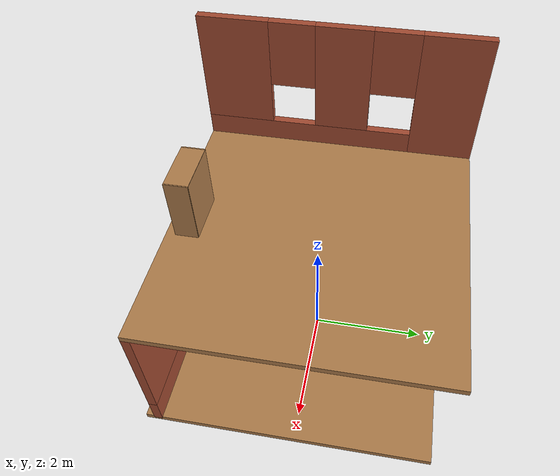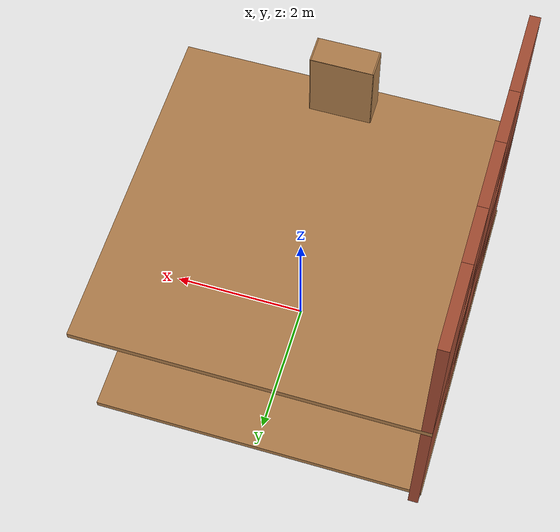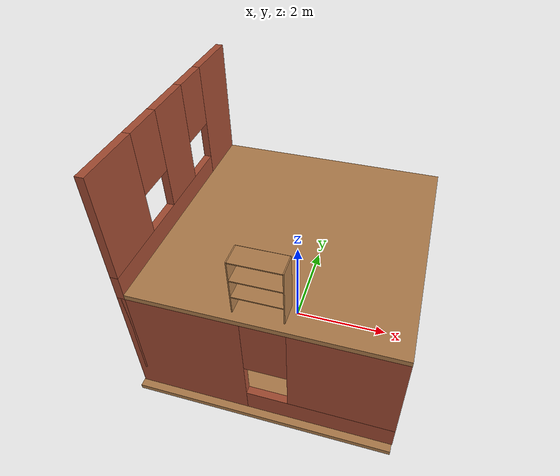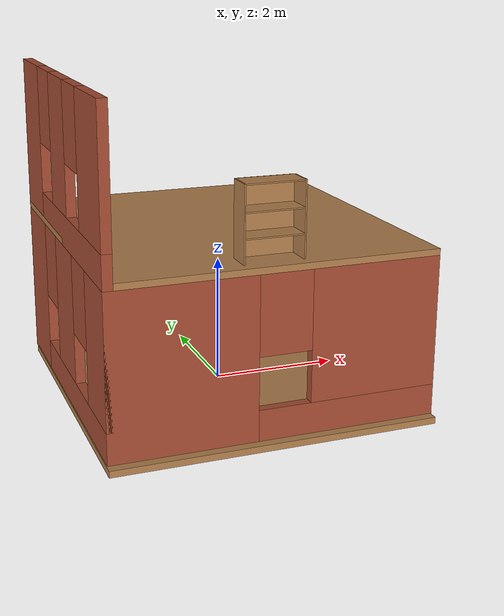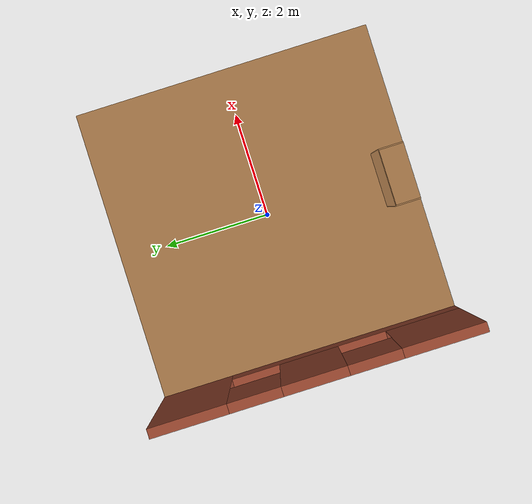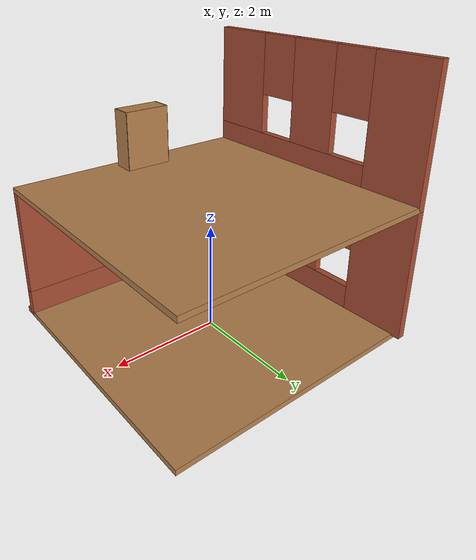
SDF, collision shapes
<sdf version="1.6">
 <model name="building1">
  <link name="Floor_0">
   <pose>0 0 2.5 0 -0 0</pose>
   <inertial>
    <mass>1</mass>
    <inertia><ixx>1</ixx><ixy>0</ixy><ixz>0</ixz><iyy>1</iyy><iyz>0</iyz><izz>1</izz></inertia>
   </inertial>
   <visual name="Floor_0_Visual">
    <pose>0 0 0.05 0 -0 0</pose>
    <geometry><box><size>5 5 0.1</size></box></geometry>
    <material>
     <script><uri>file://media/materials/scripts/gazebo.material</uri><name>Gazebo/Wood</name></script>
     <ambient>1 1 1 1</ambient>
     <shader type="pixel"><normal_map>__default__</normal_map></shader>
    </material>
    <meta><layer>1</layer></meta>
   </visual>
   <collision name="Floor_0_Collision">
    <pose>0 0 0.05 0 -0 0</pose>
    <geometry><box><size>5 5 0.1</size></box></geometry>
    <surface>
     <friction>
      <ode><mu>1</mu><mu2>1</mu2><fdir1>0 0 0</fdir1><slip1>0</slip1><slip2>0</slip2></ode>
      <torsional>
       <coefficient>1</coefficient>
       <patch_radius>0</patch_radius>
       <surface_radius>0</surface_radius>
       <use_patch_radius>1</use_patch_radius>
       <ode><slip>0</slip></ode>
      </torsional>
     </friction>
     <bounce><restitution_coefficient>0</restitution_coefficient><threshold>1e+06</threshold></bounce>
     <contact>
      <collide_without_contact>0</collide_without_contact>
      <collide_without_contact_bitmask>1</collide_without_contact_bitmask>
      <collide_bitmask>1</collide_bitmask>
      <ode>
       <soft_cfm>0</soft_cfm>
       <soft_erp>0.2</soft_erp>
       <kp>1e+13</kp>
       <kd>1</kd>
       <max_vel>0.01</max_vel>
       <min_depth>0</min_depth>
      </ode>
      <bullet>
       <split_impulse>1</split_impulse>
       <split_impulse_penetration_threshold>-0.01</split_impulse_penetration_threshold>
       <soft_cfm>0</soft_cfm>
       <soft_erp>0.2</soft_erp>
       <kp>1e+13</kp>
       <kd>1</kd>
      </bullet>
     </contact>
    </surface>
   </collision>
  </link>
  <link name="Floor_0_clone">
   <pose>-0.013101 -0.148574 -0.075535 0 -0 0</pose>
   <gravity>0</gravity>
   <inertial>
    <mass>1</mass>
    <inertia><ixx>1</ixx><ixy>0</ixy><ixz>0</ixz><iyy>1</iyy><iyz>0</iyz><izz>1</izz></inertia>
   </inertial>
   <visual name="Floor_0_Visual">
    <pose>0 0 0.05 0 -0 0</pose>
    <geometry><box><size>5 5 0.1</size></box></geometry>
    <material>
     <script><uri>file://media/materials/scripts/gazebo.material</uri><name>Gazebo/Wood</name></script>
     <ambient>1 1 1 1</ambient>
     <shader type="pixel"><normal_map>__default__</normal_map></shader>
    </material>
    <meta><layer>1</layer></meta>
   </visual>
   <collision name="Floor_0_Collision">
    <pose>0 0 0.05 0 -0 0</pose>
    <geometry><box><size>5 5 0.1</size></box></geometry>
    <surface>
     <friction>
      <ode><mu>1</mu><mu2>1</mu2><fdir1>0 0 0</fdir1><slip1>0</slip1><slip2>0</slip2></ode>
      <torsional>
       <coefficient>1</coefficient>
       <patch_radius>0</patch_radius>
       <surface_radius>0</surface_radius>
       <use_patch_radius>1</use_patch_radius>
       <ode><slip>0</slip></ode>
      </torsional>
     </friction>
     <bounce><restitution_coefficient>0</restitution_coefficient><threshold>1e+06</threshold></bounce>
     <contact>
      <collide_without_contact>0</collide_without_contact>
      <collide_without_contact_bitmask>1</collide_without_contact_bitmask>
      <collide_bitmask>1</collide_bitmask>
      <ode>
       <soft_cfm>0</soft_cfm>
       <soft_erp>0.2</soft_erp>
       <kp>1e+13</kp>
       <kd>1</kd>
       <max_vel>0.01</max_vel>
       <min_depth>0</min_depth>
      </ode>
      <bullet>
       <split_impulse>1</split_impulse>
       <split_impulse_penetration_threshold>-0.01</split_impulse_penetration_threshold>
       <soft_cfm>0</soft_cfm>
       <soft_erp>0.2</soft_erp>
       <kp>1e+13</kp>
       <kd>1</kd>
      </bullet>
     </contact>
    </surface>
   </collision>
  </link>
  <link name="Wall_1">
   <pose>0 -2.425 0 0 -0 0</pose>
   <visual name="Wall_1_Visual_3">
    <pose>0.109106 0 1.9 0 -0 0</pose>
    <geometry><box><size>0.8 0.15 1.2</size></box></geometry>
    <material>
     <script><uri>file://media/materials/scripts/gazebo.material</uri><name>Gazebo/Bricks</name></script>
     <ambient>1 1 1 1</ambient>
     <shader type="pixel"/>
    </material>
    <meta><layer>0</layer></meta>
   </visual>
   <visual name="Wall_1_Visual_1">
    <pose>1.10455 0 0.25 0 -0 0</pose>
    <geometry><box><size>2.79089 0.15 0.5</size></box></geometry>
    <material>
     <script><uri>file://media/materials/scripts/gazebo.material</uri><name>Gazebo/Bricks</name></script>
     <ambient>1 1 1 1</ambient>
     <shader type="pixel"/>
    </material>
    <meta><layer>0</layer></meta>
   </visual>
   <visual name="Wall_1_Visual_2">
    <pose>1.50455 0 1.5 0 -0 0</pose>
    <geometry><box><size>1.99089 0.15 2</size></box></geometry>
    <material>
     <script><uri>file://media/materials/scripts/gazebo.material</uri><name>Gazebo/Bricks</name></script>
     <ambient>1 1 1 1</ambient>
     <shader type="pixel"/>
    </material>
    <meta><layer>0</layer></meta>
   </visual>
   <visual name="Wall_1_Visual_0">
    <pose>-1.39545 0 1.25 0 -0 0</pose>
    <geometry><box><size>2.20911 0.15 2.5</size></box></geometry>
    <material>
     <script><uri>file://media/materials/scripts/gazebo.material</uri><name>Gazebo/Bricks</name></script>
     <ambient>1 1 1 1</ambient>
     <shader type="pixel"/>
    </material>
    <meta><layer>0</layer></meta>
   </visual>
   <collision name="Wall_1_Collision_3">
    <pose>0.109106 0 1.9 0 -0 0</pose>
    <geometry><box><size>0.8 0.15 1.2</size></box></geometry>
    <surface>
     <friction>
      <ode><mu>1</mu><mu2>1</mu2><fdir1>0 0 0</fdir1><slip1>0</slip1><slip2>0</slip2></ode>
      <torsional>
       <coefficient>1</coefficient>
       <patch_radius>0</patch_radius>
       <surface_radius>0</surface_radius>
       <use_patch_radius>1</use_patch_radius>
       <ode><slip>0</slip></ode>
      </torsional>
     </friction>
     <bounce><restitution_coefficient>0</restitution_coefficient><threshold>1e+06</threshold></bounce>
     <contact>
      <collide_without_contact>0</collide_without_contact>
      <collide_without_contact_bitmask>1</collide_without_contact_bitmask>
      <collide_bitmask>1</collide_bitmask>
      <ode>
       <soft_cfm>0</soft_cfm>
       <soft_erp>0.2</soft_erp>
       <kp>1e+13</kp>
       <kd>1</kd>
       <max_vel>0.01</max_vel>
       <min_depth>0</min_depth>
      </ode>
      <bullet>
       <split_impulse>1</split_impulse>
       <split_impulse_penetration_threshold>-0.01</split_impulse_penetration_threshold>
       <soft_cfm>0</soft_cfm>
       <soft_erp>0.2</soft_erp>
       <kp>1e+13</kp>
       <kd>1</kd>
      </bullet>
     </contact>
    </surface>
   </collision>
   <collision name="Wall_1_Collision_2">
    <pose>1.50455 0 1.5 0 -0 0</pose>
    <geometry><box><size>1.99089 0.15 2</size></box></geometry>
    <surface>
     <friction>
      <ode><mu>1</mu><mu2>1</mu2><fdir1>0 0 0</fdir1><slip1>0</slip1><slip2>0</slip2></ode>
      <torsional>
       <coefficient>1</coefficient>
       <patch_radius>0</patch_radius>
       <surface_radius>0</surface_radius>
       <use_patch_radius>1</use_patch_radius>
       <ode><slip>0</slip></ode>
      </torsional>
     </friction>
     <bounce><restitution_coefficient>0</restitution_coefficient><threshold>1e+06</threshold></bounce>
     <contact>
      <collide_without_contact>0</collide_without_contact>
      <collide_without_contact_bitmask>1</collide_without_contact_bitmask>
      <collide_bitmask>1</collide_bitmask>
      <ode>
       <soft_cfm>0</soft_cfm>
       <soft_erp>0.2</soft_erp>
       <kp>1e+13</kp>
       <kd>1</kd>
       <max_vel>0.01</max_vel>
       <min_depth>0</min_depth>
      </ode>
      <bullet>
       <split_impulse>1</split_impulse>
       <split_impulse_penetration_threshold>-0.01</split_impulse_penetration_threshold>
       <soft_cfm>0</soft_cfm>
       <soft_erp>0.2</soft_erp>
       <kp>1e+13</kp>
       <kd>1</kd>
      </bullet>
     </contact>
    </surface>
   </collision>
   <collision name="Wall_1_Collision_1">
    <pose>1.10455 0 0.25 0 -0 0</pose>
    <geometry><box><size>2.79089 0.15 0.5</size></box></geometry>
    <surface>
     <friction>
      <ode><mu>1</mu><mu2>1</mu2><fdir1>0 0 0</fdir1><slip1>0</slip1><slip2>0</slip2></ode>
      <torsional>
       <coefficient>1</coefficient>
       <patch_radius>0</patch_radius>
       <surface_radius>0</surface_radius>
       <use_patch_radius>1</use_patch_radius>
       <ode><slip>0</slip></ode>
      </torsional>
     </friction>
     <bounce><restitution_coefficient>0</restitution_coefficient><threshold>1e+06</threshold></bounce>
     <contact>
      <collide_without_contact>0</collide_without_contact>
      <collide_without_contact_bitmask>1</collide_without_contact_bitmask>
      <collide_bitmask>1</collide_bitmask>
      <ode>
       <soft_cfm>0</soft_cfm>
       <soft_erp>0.2</soft_erp>
       <kp>1e+13</kp>
       <kd>1</kd>
       <max_vel>0.01</max_vel>
       <min_depth>0</min_depth>
      </ode>
      <bullet>
       <split_impulse>1</split_impulse>
       <split_impulse_penetration_threshold>-0.01</split_impulse_penetration_threshold>
       <soft_cfm>0</soft_cfm>
       <soft_erp>0.2</soft_erp>
       <kp>1e+13</kp>
       <kd>1</kd>
      </bullet>
     </contact>
    </surface>
   </collision>
   <collision name="Wall_1_Collision_0">
    <pose>-1.39545 0 1.25 0 -0 0</pose>
    <geometry><box><size>2.20911 0.15 2.5</size></box></geometry>
    <surface>
     <friction>
      <ode><mu>1</mu><mu2>1</mu2><fdir1>0 0 0</fdir1><slip1>0</slip1><slip2>0</slip2></ode>
      <torsional>
       <coefficient>1</coefficient>
       <patch_radius>0</patch_radius>
       <surface_radius>0</surface_radius>
       <use_patch_radius>1</use_patch_radius>
       <ode><slip>0</slip></ode>
      </torsional>
     </friction>
     <bounce><restitution_coefficient>0</restitution_coefficient><threshold>1e+06</threshold></bounce>
     <contact>
      <collide_without_contact>0</collide_without_contact>
      <collide_without_contact_bitmask>1</collide_without_contact_bitmask>
      <collide_bitmask>1</collide_bitmask>
      <ode>
       <soft_cfm>0</soft_cfm>
       <soft_erp>0.2</soft_erp>
       <kp>1e+13</kp>
       <kd>1</kd>
       <max_vel>0.01</max_vel>
       <min_depth>0</min_depth>
      </ode>
      <bullet>
       <split_impulse>1</split_impulse>
       <split_impulse_penetration_threshold>-0.01</split_impulse_penetration_threshold>
       <soft_cfm>0</soft_cfm>
       <soft_erp>0.2</soft_erp>
       <kp>1e+13</kp>
       <kd>1</kd>
      </bullet>
     </contact>
    </surface>
   </collision>
  </link>
  <link name="Wall_11">
   <pose>-2.425 0 2.5 0 0 -1.5708</pose>
   <visual name="Wall_11_Visual_0">
    <pose>-1.91127 0 1.25 0 -0 0</pose>
    <geometry><box><size>1.17746 0.15 2.5</size></box></geometry>
    <material>
     <script><uri>file://media/materials/scripts/gazebo.material</uri><name>Gazebo/Bricks</name></script>
     <ambient>1 1 1 1</ambient>
     <shader type="pixel"/>
    </material>
    <meta><layer>1</layer></meta>
   </visual>
   <visual name="Wall_11_Visual_4">
    <pose>-0.922536 0 1.9 0 -0 0</pose>
    <geometry><box><size>0.8 0.15 1.2</size></box></geometry>
    <material>
     <script><uri>file://media/materials/scripts/gazebo.material</uri><name>Gazebo/Bricks</name></script>
     <ambient>1 1 1 1</ambient>
     <shader type="pixel"/>
    </material>
    <meta><layer>1</layer></meta>
   </visual>
   <visual name="Wall_11_Visual_1">
    <pose>0.588732 0 0.25 0 -0 0</pose>
    <geometry><box><size>3.82254 0.15 0.5</size></box></geometry>
    <material>
     <script><uri>file://media/materials/scripts/gazebo.material</uri><name>Gazebo/Bricks</name></script>
     <ambient>1 1 1 1</ambient>
     <shader type="pixel"/>
    </material>
    <meta><layer>1</layer></meta>
   </visual>
   <visual name="Wall_11_Visual_5">
    <pose>0.857464 0 1.9 0 -0 0</pose>
    <geometry><box><size>0.8 0.15 1.2</size></box></geometry>
    <material>
     <script><uri>file://media/materials/scripts/gazebo.material</uri><name>Gazebo/Bricks</name></script>
     <ambient>1 1 1 1</ambient>
     <shader type="pixel"/>
    </material>
    <meta><layer>1</layer></meta>
   </visual>
   <visual name="Wall_11_Visual_3">
    <pose>1.87873 0 1.5 0 -0 0</pose>
    <geometry><box><size>1.24254 0.15 2</size></box></geometry>
    <material>
     <script><uri>file://media/materials/scripts/gazebo.material</uri><name>Gazebo/Bricks</name></script>
     <ambient>1 1 1 1</ambient>
     <shader type="pixel"/>
    </material>
    <meta><layer>1</layer></meta>
   </visual>
   <visual name="Wall_11_Visual_2">
    <pose>-0.032536 0 1.5 0 -0 0</pose>
    <geometry><box><size>0.98 0.15 2</size></box></geometry>
    <material>
     <script><uri>file://media/materials/scripts/gazebo.material</uri><name>Gazebo/Bricks</name></script>
     <ambient>1 1 1 1</ambient>
     <shader type="pixel"/>
    </material>
    <meta><layer>1</layer></meta>
   </visual>
   <collision name="Wall_11_Collision_5">
    <pose>0.857464 0 1.9 0 -0 0</pose>
    <geometry><box><size>0.8 0.15 1.2</size></box></geometry>
    <surface>
     <friction>
      <ode><mu>1</mu><mu2>1</mu2><fdir1>0 0 0</fdir1><slip1>0</slip1><slip2>0</slip2></ode>
      <torsional>
       <coefficient>1</coefficient>
       <patch_radius>0</patch_radius>
       <surface_radius>0</surface_radius>
       <use_patch_radius>1</use_patch_radius>
       <ode><slip>0</slip></ode>
      </torsional>
     </friction>
     <bounce><restitution_coefficient>0</restitution_coefficient><threshold>1e+06</threshold></bounce>
     <contact>
      <collide_without_contact>0</collide_without_contact>
      <collide_without_contact_bitmask>1</collide_without_contact_bitmask>
      <collide_bitmask>1</collide_bitmask>
      <ode>
       <soft_cfm>0</soft_cfm>
       <soft_erp>0.2</soft_erp>
       <kp>1e+13</kp>
       <kd>1</kd>
       <max_vel>0.01</max_vel>
       <min_depth>0</min_depth>
      </ode>
      <bullet>
       <split_impulse>1</split_impulse>
       <split_impulse_penetration_threshold>-0.01</split_impulse_penetration_threshold>
       <soft_cfm>0</soft_cfm>
       <soft_erp>0.2</soft_erp>
       <kp>1e+13</kp>
       <kd>1</kd>
      </bullet>
     </contact>
    </surface>
   </collision>
   <collision name="Wall_11_Collision_4">
    <pose>-0.922536 0 1.9 0 -0 0</pose>
    <geometry><box><size>0.8 0.15 1.2</size></box></geometry>
    <surface>
     <friction>
      <ode><mu>1</mu><mu2>1</mu2><fdir1>0 0 0</fdir1><slip1>0</slip1><slip2>0</slip2></ode>
      <torsional>
       <coefficient>1</coefficient>
       <patch_radius>0</patch_radius>
       <surface_radius>0</surface_radius>
       <use_patch_radius>1</use_patch_radius>
       <ode><slip>0</slip></ode>
      </torsional>
     </friction>
     <bounce><restitution_coefficient>0</restitution_coefficient><threshold>1e+06</threshold></bounce>
     <contact>
      <collide_without_contact>0</collide_without_contact>
      <collide_without_contact_bitmask>1</collide_without_contact_bitmask>
      <collide_bitmask>1</collide_bitmask>
      <ode>
       <soft_cfm>0</soft_cfm>
       <soft_erp>0.2</soft_erp>
       <kp>1e+13</kp>
       <kd>1</kd>
       <max_vel>0.01</max_vel>
       <min_depth>0</min_depth>
      </ode>
      <bullet>
       <split_impulse>1</split_impulse>
       <split_impulse_penetration_threshold>-0.01</split_impulse_penetration_threshold>
       <soft_cfm>0</soft_cfm>
       <soft_erp>0.2</soft_erp>
       <kp>1e+13</kp>
       <kd>1</kd>
      </bullet>
     </contact>
    </surface>
   </collision>
   <collision name="Wall_11_Collision_2">
    <pose>-0.032536 0 1.5 0 -0 0</pose>
    <geometry><box><size>0.98 0.15 2</size></box></geometry>
    <surface>
     <friction>
      <ode><mu>1</mu><mu2>1</mu2><fdir1>0 0 0</fdir1><slip1>0</slip1><slip2>0</slip2></ode>
      <torsional>
       <coefficient>1</coefficient>
       <patch_radius>0</patch_radius>
       <surface_radius>0</surface_radius>
       <use_patch_radius>1</use_patch_radius>
       <ode><slip>0</slip></ode>
      </torsional>
     </friction>
     <bounce><restitution_coefficient>0</restitution_coefficient><threshold>1e+06</threshold></bounce>
     <contact>
      <collide_without_contact>0</collide_without_contact>
      <collide_without_contact_bitmask>1</collide_without_contact_bitmask>
      <collide_bitmask>1</collide_bitmask>
      <ode>
       <soft_cfm>0</soft_cfm>
       <soft_erp>0.2</soft_erp>
       <kp>1e+13</kp>
       <kd>1</kd>
       <max_vel>0.01</max_vel>
       <min_depth>0</min_depth>
      </ode>
      <bullet>
       <split_impulse>1</split_impulse>
       <split_impulse_penetration_threshold>-0.01</split_impulse_penetration_threshold>
       <soft_cfm>0</soft_cfm>
       <soft_erp>0.2</soft_erp>
       <kp>1e+13</kp>
       <kd>1</kd>
      </bullet>
     </contact>
    </surface>
   </collision>
   <collision name="Wall_11_Collision_3">
    <pose>1.87873 0 1.5 0 -0 0</pose>
    <geometry><box><size>1.24254 0.15 2</size></box></geometry>
    <surface>
     <friction>
      <ode><mu>1</mu><mu2>1</mu2><fdir1>0 0 0</fdir1><slip1>0</slip1><slip2>0</slip2></ode>
      <torsional>
       <coefficient>1</coefficient>
       <patch_radius>0</patch_radius>
       <surface_radius>0</surface_radius>
       <use_patch_radius>1</use_patch_radius>
       <ode><slip>0</slip></ode>
      </torsional>
     </friction>
     <bounce><restitution_coefficient>0</restitution_coefficient><threshold>1e+06</threshold></bounce>
     <contact>
      <collide_without_contact>0</collide_without_contact>
      <collide_without_contact_bitmask>1</collide_without_contact_bitmask>
      <collide_bitmask>1</collide_bitmask>
      <ode>
       <soft_cfm>0</soft_cfm>
       <soft_erp>0.2</soft_erp>
       <kp>1e+13</kp>
       <kd>1</kd>
       <max_vel>0.01</max_vel>
       <min_depth>0</min_depth>
      </ode>
      <bullet>
       <split_impulse>1</split_impulse>
       <split_impulse_penetration_threshold>-0.01</split_impulse_penetration_threshold>
       <soft_cfm>0</soft_cfm>
       <soft_erp>0.2</soft_erp>
       <kp>1e+13</kp>
       <kd>1</kd>
      </bullet>
     </contact>
    </surface>
   </collision>
   <collision name="Wall_11_Collision_0">
    <pose>-1.91127 0 1.25 0 -0 0</pose>
    <geometry><box><size>1.17746 0.15 2.5</size></box></geometry>
    <surface>
     <friction>
      <ode><mu>1</mu><mu2>1</mu2><fdir1>0 0 0</fdir1><slip1>0</slip1><slip2>0</slip2></ode>
      <torsional>
       <coefficient>1</coefficient>
       <patch_radius>0</patch_radius>
       <surface_radius>0</surface_radius>
       <use_patch_radius>1</use_patch_radius>
       <ode><slip>0</slip></ode>
      </torsional>
     </friction>
     <bounce><restitution_coefficient>0</restitution_coefficient><threshold>1e+06</threshold></bounce>
     <contact>
      <collide_without_contact>0</collide_without_contact>
      <collide_without_contact_bitmask>1</collide_without_contact_bitmask>
      <collide_bitmask>1</collide_bitmask>
      <ode>
       <soft_cfm>0</soft_cfm>
       <soft_erp>0.2</soft_erp>
       <kp>1e+13</kp>
       <kd>1</kd>
       <max_vel>0.01</max_vel>
       <min_depth>0</min_depth>
      </ode>
      <bullet>
       <split_impulse>1</split_impulse>
       <split_impulse_penetration_threshold>-0.01</split_impulse_penetration_threshold>
       <soft_cfm>0</soft_cfm>
       <soft_erp>0.2</soft_erp>
       <kp>1e+13</kp>
       <kd>1</kd>
      </bullet>
     </contact>
    </surface>
   </collision>
   <collision name="Wall_11_Collision_1">
    <pose>0.588732 0 0.25 0 -0 0</pose>
    <geometry><box><size>3.82254 0.15 0.5</size></box></geometry>
    <surface>
     <friction>
      <ode><mu>1</mu><mu2>1</mu2><fdir1>0 0 0</fdir1><slip1>0</slip1><slip2>0</slip2></ode>
      <torsional>
       <coefficient>1</coefficient>
       <patch_radius>0</patch_radius>
       <surface_radius>0</surface_radius>
       <use_patch_radius>1</use_patch_radius>
       <ode><slip>0</slip></ode>
      </torsional>
     </friction>
     <bounce><restitution_coefficient>0</restitution_coefficient><threshold>1e+06</threshold></bounce>
     <contact>
      <collide_without_contact>0</collide_without_contact>
      <collide_without_contact_bitmask>1</collide_without_contact_bitmask>
      <collide_bitmask>1</collide_bitmask>
      <ode>
       <soft_cfm>0</soft_cfm>
       <soft_erp>0.2</soft_erp>
       <kp>1e+13</kp>
       <kd>1</kd>
       <max_vel>0.01</max_vel>
       <min_depth>0</min_depth>
      </ode>
      <bullet>
       <split_impulse>1</split_impulse>
       <split_impulse_penetration_threshold>-0.01</split_impulse_penetration_threshold>
       <soft_cfm>0</soft_cfm>
       <soft_erp>0.2</soft_erp>
       <kp>1e+13</kp>
       <kd>1</kd>
      </bullet>
     </contact>
    </surface>
   </collision>
  </link>
  <link name="Wall_5">
   <pose>-2.425 0 0 0 0 -1.5708</pose>
   <visual name="Wall_5_Visual_4">
    <pose>-0.848482 0 1.9 0 -0 0</pose>
    <geometry><box><size>0.8 0.15 1.2</size></box></geometry>
    <material>
     <script><uri>file://media/materials/scripts/gazebo.material</uri><name>Gazebo/Bricks</name></script>
     <ambient>1 1 1 1</ambient>
     <shader type="pixel"/>
    </material>
    <meta><layer>0</layer></meta>
   </visual>
   <visual name="Wall_5_Visual_5">
    <pose>1.06782 0 1.9 0 -0 0</pose>
    <geometry><box><size>0.8 0.15 1.2</size></box></geometry>
    <material>
     <script><uri>file://media/materials/scripts/gazebo.material</uri><name>Gazebo/Bricks</name></script>
     <ambient>1 1 1 1</ambient>
     <shader type="pixel"/>
    </material>
    <meta><layer>0</layer></meta>
   </visual>
   <visual name="Wall_5_Visual_3">
    <pose>1.98391 0 1.5 0 -0 0</pose>
    <geometry><box><size>1.03218 0.15 2</size></box></geometry>
    <material>
     <script><uri>file://media/materials/scripts/gazebo.material</uri><name>Gazebo/Bricks</name></script>
     <ambient>1 1 1 1</ambient>
     <shader type="pixel"/>
    </material>
    <meta><layer>0</layer></meta>
   </visual>
   <visual name="Wall_5_Visual_0">
    <pose>-1.87424 0 1.25 0 -0 0</pose>
    <geometry><box><size>1.25152 0.15 2.5</size></box></geometry>
    <material>
     <script><uri>file://media/materials/scripts/gazebo.material</uri><name>Gazebo/Bricks</name></script>
     <ambient>1 1 1 1</ambient>
     <shader type="pixel"/>
    </material>
    <meta><layer>0</layer></meta>
   </visual>
   <visual name="Wall_5_Visual_2">
    <pose>0.109669 0 1.5 0 -0 0</pose>
    <geometry><box><size>1.1163 0.15 2</size></box></geometry>
    <material>
     <script><uri>file://media/materials/scripts/gazebo.material</uri><name>Gazebo/Bricks</name></script>
     <ambient>1 1 1 1</ambient>
     <shader type="pixel"/>
    </material>
    <meta><layer>0</layer></meta>
   </visual>
   <visual name="Wall_5_Visual_1">
    <pose>0.625759 0 0.25 0 -0 0</pose>
    <geometry><box><size>3.74848 0.15 0.5</size></box></geometry>
    <material>
     <script><uri>file://media/materials/scripts/gazebo.material</uri><name>Gazebo/Bricks</name></script>
     <ambient>1 1 1 1</ambient>
     <shader type="pixel"/>
    </material>
    <meta><layer>0</layer></meta>
   </visual>
   <collision name="Wall_5_Collision_0">
    <pose>-1.87424 0 1.25 0 -0 0</pose>
    <geometry><box><size>1.25152 0.15 2.5</size></box></geometry>
    <surface>
     <friction>
      <ode><mu>1</mu><mu2>1</mu2><fdir1>0 0 0</fdir1><slip1>0</slip1><slip2>0</slip2></ode>
      <torsional>
       <coefficient>1</coefficient>
       <patch_radius>0</patch_radius>
       <surface_radius>0</surface_radius>
       <use_patch_radius>1</use_patch_radius>
       <ode><slip>0</slip></ode>
      </torsional>
     </friction>
     <bounce><restitution_coefficient>0</restitution_coefficient><threshold>1e+06</threshold></bounce>
     <contact>
      <collide_without_contact>0</collide_without_contact>
      <collide_without_contact_bitmask>1</collide_without_contact_bitmask>
      <collide_bitmask>1</collide_bitmask>
      <ode>
       <soft_cfm>0</soft_cfm>
       <soft_erp>0.2</soft_erp>
       <kp>1e+13</kp>
       <kd>1</kd>
       <max_vel>0.01</max_vel>
       <min_depth>0</min_depth>
      </ode>
      <bullet>
       <split_impulse>1</split_impulse>
       <split_impulse_penetration_threshold>-0.01</split_impulse_penetration_threshold>
       <soft_cfm>0</soft_cfm>
       <soft_erp>0.2</soft_erp>
       <kp>1e+13</kp>
       <kd>1</kd>
      </bullet>
     </contact>
    </surface>
   </collision>
   <collision name="Wall_5_Collision_1">
    <pose>0.625759 0 0.25 0 -0 0</pose>
    <geometry><box><size>3.74848 0.15 0.5</size></box></geometry>
    <surface>
     <friction>
      <ode><mu>1</mu><mu2>1</mu2><fdir1>0 0 0</fdir1><slip1>0</slip1><slip2>0</slip2></ode>
      <torsional>
       <coefficient>1</coefficient>
       <patch_radius>0</patch_radius>
       <surface_radius>0</surface_radius>
       <use_patch_radius>1</use_patch_radius>
       <ode><slip>0</slip></ode>
      </torsional>
     </friction>
     <bounce><restitution_coefficient>0</restitution_coefficient><threshold>1e+06</threshold></bounce>
     <contact>
      <collide_without_contact>0</collide_without_contact>
      <collide_without_contact_bitmask>1</collide_without_contact_bitmask>
      <collide_bitmask>1</collide_bitmask>
      <ode>
       <soft_cfm>0</soft_cfm>
       <soft_erp>0.2</soft_erp>
       <kp>1e+13</kp>
       <kd>1</kd>
       <max_vel>0.01</max_vel>
       <min_depth>0</min_depth>
      </ode>
      <bullet>
       <split_impulse>1</split_impulse>
       <split_impulse_penetration_threshold>-0.01</split_impulse_penetration_threshold>
       <soft_cfm>0</soft_cfm>
       <soft_erp>0.2</soft_erp>
       <kp>1e+13</kp>
       <kd>1</kd>
      </bullet>
     </contact>
    </surface>
   </collision>
   <collision name="Wall_5_Collision_3">
    <pose>1.98391 0 1.5 0 -0 0</pose>
    <geometry><box><size>1.03218 0.15 2</size></box></geometry>
    <surface>
     <friction>
      <ode><mu>1</mu><mu2>1</mu2><fdir1>0 0 0</fdir1><slip1>0</slip1><slip2>0</slip2></ode>
      <torsional>
       <coefficient>1</coefficient>
       <patch_radius>0</patch_radius>
       <surface_radius>0</surface_radius>
       <use_patch_radius>1</use_patch_radius>
       <ode><slip>0</slip></ode>
      </torsional>
     </friction>
     <bounce><restitution_coefficient>0</restitution_coefficient><threshold>1e+06</threshold></bounce>
     <contact>
      <collide_without_contact>0</collide_without_contact>
      <collide_without_contact_bitmask>1</collide_without_contact_bitmask>
      <collide_bitmask>1</collide_bitmask>
      <ode>
       <soft_cfm>0</soft_cfm>
       <soft_erp>0.2</soft_erp>
       <kp>1e+13</kp>
       <kd>1</kd>
       <max_vel>0.01</max_vel>
       <min_depth>0</min_depth>
      </ode>
      <bullet>
       <split_impulse>1</split_impulse>
       <split_impulse_penetration_threshold>-0.01</split_impulse_penetration_threshold>
       <soft_cfm>0</soft_cfm>
       <soft_erp>0.2</soft_erp>
       <kp>1e+13</kp>
       <kd>1</kd>
      </bullet>
     </contact>
    </surface>
   </collision>
   <collision name="Wall_5_Collision_5">
    <pose>1.06782 0 1.9 0 -0 0</pose>
    <geometry><box><size>0.8 0.15 1.2</size></box></geometry>
    <surface>
     <friction>
      <ode><mu>1</mu><mu2>1</mu2><fdir1>0 0 0</fdir1><slip1>0</slip1><slip2>0</slip2></ode>
      <torsional>
       <coefficient>1</coefficient>
       <patch_radius>0</patch_radius>
       <surface_radius>0</surface_radius>
       <use_patch_radius>1</use_patch_radius>
       <ode><slip>0</slip></ode>
      </torsional>
     </friction>
     <bounce><restitution_coefficient>0</restitution_coefficient><threshold>1e+06</threshold></bounce>
     <contact>
      <collide_without_contact>0</collide_without_contact>
      <collide_without_contact_bitmask>1</collide_without_contact_bitmask>
      <collide_bitmask>1</collide_bitmask>
      <ode>
       <soft_cfm>0</soft_cfm>
       <soft_erp>0.2</soft_erp>
       <kp>1e+13</kp>
       <kd>1</kd>
       <max_vel>0.01</max_vel>
       <min_depth>0</min_depth>
      </ode>
      <bullet>
       <split_impulse>1</split_impulse>
       <split_impulse_penetration_threshold>-0.01</split_impulse_penetration_threshold>
       <soft_cfm>0</soft_cfm>
       <soft_erp>0.2</soft_erp>
       <kp>1e+13</kp>
       <kd>1</kd>
      </bullet>
     </contact>
    </surface>
   </collision>
   <collision name="Wall_5_Collision_4">
    <pose>-0.848482 0 1.9 0 -0 0</pose>
    <geometry><box><size>0.8 0.15 1.2</size></box></geometry>
    <surface>
     <friction>
      <ode><mu>1</mu><mu2>1</mu2><fdir1>0 0 0</fdir1><slip1>0</slip1><slip2>0</slip2></ode>
      <torsional>
       <coefficient>1</coefficient>
       <patch_radius>0</patch_radius>
       <surface_radius>0</surface_radius>
       <use_patch_radius>1</use_patch_radius>
       <ode><slip>0</slip></ode>
      </torsional>
     </friction>
     <bounce><restitution_coefficient>0</restitution_coefficient><threshold>1e+06</threshold></bounce>
     <contact>
      <collide_without_contact>0</collide_without_contact>
      <collide_without_contact_bitmask>1</collide_without_contact_bitmask>
      <collide_bitmask>1</collide_bitmask>
      <ode>
       <soft_cfm>0</soft_cfm>
       <soft_erp>0.2</soft_erp>
       <kp>1e+13</kp>
       <kd>1</kd>
       <max_vel>0.01</max_vel>
       <min_depth>0</min_depth>
      </ode>
      <bullet>
       <split_impulse>1</split_impulse>
       <split_impulse_penetration_threshold>-0.01</split_impulse_penetration_threshold>
       <soft_cfm>0</soft_cfm>
       <soft_erp>0.2</soft_erp>
       <kp>1e+13</kp>
       <kd>1</kd>
      </bullet>
     </contact>
    </surface>
   </collision>
   <collision name="Wall_5_Collision_2">
    <pose>0.109669 0 1.5 0 -0 0</pose>
    <geometry><box><size>1.1163 0.15 2</size></box></geometry>
    <surface>
     <friction>
      <ode><mu>1</mu><mu2>1</mu2><fdir1>0 0 0</fdir1><slip1>0</slip1><slip2>0</slip2></ode>
      <torsional>
       <coefficient>1</coefficient>
       <patch_radius>0</patch_radius>
       <surface_radius>0</surface_radius>
       <use_patch_radius>1</use_patch_radius>
       <ode><slip>0</slip></ode>
      </torsional>
     </friction>
     <bounce><restitution_coefficient>0</restitution_coefficient><threshold>1e+06</threshold></bounce>
     <contact>
      <collide_without_contact>0</collide_without_contact>
      <collide_without_contact_bitmask>1</collide_without_contact_bitmask>
      <collide_bitmask>1</collide_bitmask>
      <ode>
       <soft_cfm>0</soft_cfm>
       <soft_erp>0.2</soft_erp>
       <kp>1e+13</kp>
       <kd>1</kd>
       <max_vel>0.01</max_vel>
       <min_depth>0</min_depth>
      </ode>
      <bullet>
       <split_impulse>1</split_impulse>
       <split_impulse_penetration_threshold>-0.01</split_impulse_penetration_threshold>
       <soft_cfm>0</soft_cfm>
       <soft_erp>0.2</soft_erp>
       <kp>1e+13</kp>
       <kd>1</kd>
      </bullet>
     </contact>
    </surface>
   </collision>
  </link>
  <link name="link_1">
   <inertial>
    <mass>0.0689277</mass>
    <inertia>
     <ixx>0.00189334</ixx>
     <ixy>0</ixy>
     <ixz>0</ixz>
     <iyy>0.00334986</iyy>
     <iyz>0</iyz>
     <izz>0.00210027</izz>
    </inertia>
   </inertial>
   <pose>-0.712421 -2.24257 0.823376 0 -0 0</pose>
   <gravity>0</gravity>
   <visual name="visual">
    <geometry><box><size>0.556426 0.23672 0.523053</size></box></geometry>
    <material>
     <lighting>1</lighting>
     <script><uri>file://media/materials/scripts/gazebo.material</uri><name>Gazebo/Red</name></script>
     <shader type="pixel"><normal_map>__default__</normal_map></shader>
     <ambient>1 0 0 1</ambient>
     <diffuse>1 0 0 1</diffuse>
     <specular>0.1 0.1 0.1 1</specular>
     <emissive>0 0 0 1</emissive>
    </material>
   </visual>
   <collision name="collision">
    <geometry><box><size>0.556426 0.23672 0.523053</size></box></geometry>
    <surface>
     <friction>
      <ode><mu>1</mu><mu2>1</mu2><fdir1>0 0 0</fdir1><slip1>0</slip1><slip2>0</slip2></ode>
      <torsional>
       <coefficient>1</coefficient>
       <patch_radius>0</patch_radius>
       <surface_radius>0</surface_radius>
       <use_patch_radius>1</use_patch_radius>
       <ode><slip>0</slip></ode>
      </torsional>
     </friction>
     <bounce><restitution_coefficient>0</restitution_coefficient><threshold>1e+06</threshold></bounce>
     <contact>
      <collide_without_contact>0</collide_without_contact>
      <collide_without_contact_bitmask>1</collide_without_contact_bitmask>
      <collide_bitmask>1</collide_bitmask>
      <ode>
       <soft_cfm>0</soft_cfm>
       <soft_erp>0.2</soft_erp>
       <kp>1e+13</kp>
       <kd>1</kd>
       <max_vel>0.01</max_vel>
       <min_depth>0</min_depth>
      </ode>
      <bullet>
       <split_impulse>1</split_impulse>
       <split_impulse_penetration_threshold>-0.01</split_impulse_penetration_threshold>
       <soft_cfm>0</soft_cfm>
       <soft_erp>0.2</soft_erp>
       <kp>1e+13</kp>
       <kd>1</kd>
      </bullet>
     </contact>
    </surface>
   </collision>
  </link>
  <model name="bookshelf">
   <static>1</static>
   <link name="link">
    <inertial><mass>1</mass></inertial>
    <collision name="back">
     <pose>0 0.005 0.6 0 -0 0</pose>
     <geometry><box><size>0.9 0.01 1.2</size></box></geometry>
    </collision>
    <visual name="visual1">
     <pose>0 0.005 0.6 0 -0 0</pose>
     <geometry><box><size>0.9 0.01 1.2</size></box></geometry>
     <material>
      <script><uri>file://media/materials/scripts/gazebo.material</uri><name>Gazebo/Wood</name></script>
     </material>
    </visual>
    <collision name="left_side">
     <pose>0.45 -0.195 0.6 0 -0 0</pose>
     <geometry><box><size>0.02 0.4 1.2</size></box></geometry>
    </collision>
    <visual name="visual2">
     <pose>0.45 -0.195 0.6 0 -0 0</pose>
     <geometry><box><size>0.02 0.4 1.2</size></box></geometry>
     <material>
      <script><uri>file://media/materials/scripts/gazebo.material</uri><name>Gazebo/Wood</name></script>
     </material>
    </visual>
    <collision name="right_side">
     <pose>-0.45 -0.195 0.6 0 -0 0</pose>
     <geometry><box><size>0.02 0.4 1.2</size></box></geometry>
    </collision>
    <visual name="visual3">
     <pose>-0.45 -0.195 0.6 0 -0 0</pose>
     <geometry><box><size>0.02 0.4 1.2</size></box></geometry>
     <material>
      <script><uri>file://media/materials/scripts/gazebo.material</uri><name>Gazebo/Wood</name></script>
     </material>
    </visual>
    <collision name="bottom">
     <pose>0 -0.195 0.03 0 -0 0</pose>
     <geometry><box><size>0.88 0.4 0.06</size></box></geometry>
    </collision>
    <visual name="visual4">
     <pose>0 -0.195 0.03 0 -0 0</pose>
     <geometry><box><size>0.88 0.4 0.06</size></box></geometry>
     <material>
      <script><uri>file://media/materials/scripts/gazebo.material</uri><name>Gazebo/Wood</name></script>
     </material>
    </visual>
    <collision name="top">
     <pose>0 -0.195 1.19 0 -0 0</pose>
     <geometry><box><size>0.88 0.4 0.02</size></box></geometry>
    </collision>
    <visual name="visual5">
     <pose>0 -0.195 1.19 0 -0 0</pose>
     <geometry><box><size>0.88 0.4 0.02</size></box></geometry>
     <material>
      <script><uri>file://media/materials/scripts/gazebo.material</uri><name>Gazebo/Wood</name></script>
     </material>
    </visual>
    <collision name="low_shelf">
     <pose>0 -0.195 0.43 0 -0 0</pose>
     <geometry><box><size>0.88 0.4 0.02</size></box></geometry>
    </collision>
    <visual name="visual6">
     <pose>0 -0.195 0.43 0 -0 0</pose>
     <geometry><box><size>0.88 0.4 0.02</size></box></geometry>
     <material>
      <script><uri>file://media/materials/scripts/gazebo.material</uri><name>Gazebo/Wood</name></script>
     </material>
    </visual>
    <collision name="high_shelf">
     <pose>0 -0.195 0.8 0 -0 0</pose>
     <geometry><box><size>0.88 0.4 0.02</size></box></geometry>
    </collision>
    <visual name="visual7">
     <pose>0 -0.195 0.8 0 -0 0</pose>
     <geometry><box><size>0.88 0.4 0.02</size></box></geometry>
     <material>
      <script><uri>file://media/materials/scripts/gazebo.material</uri><name>Gazebo/Wood</name></script>
     </material>
    </visual>
   </link>
   <pose>-0.009673 -1.94077 2.5361 0 -0 0</pose>
  </model>
  <model name="cabinet">
   <static>1</static>
   <link name="cabinet_bottom_plate">
    <inertial>
     <pose>0 0 -1 0 -0 0</pose>
     <inertia><ixx>2.05</ixx><ixy>0</ixy><ixz>0</ixz><iyy>2.05</iyy><iyz>0</iyz><izz>2.05</izz></inertia>
     <mass>25</mass>
    </inertial>
    <collision name="cabinet_bottom_plate_geom">
     <pose>0 0 0.01 0 -0 0</pose>
     <geometry><box><size>0.45 0.45 0.02</size></box></geometry>
    </collision>
    <visual name="cabinet_bottom_plate_geom_visual">
     <pose>0 0 0.01 0 -0 0</pose>
     <geometry><box><size>0.45 0.45 0.02</size></box></geometry>
     <material>
      <script><uri>file://media/materials/scripts/gazebo.material</uri><name>Gazebo/Wood</name></script>
     </material>
    </visual>
    <collision name="cabinet_bottom_plate_geom_cabinet_back_plate">
     <pose>0.235 0 0.51 0 -0 0</pose>
     <geometry><box><size>0.02 0.45 1.02</size></box></geometry>
    </collision>
    <visual name="cabinet_bottom_plate_geom_cabinet_back_plate_visual">
     <pose>0.235 0 0.51 0 -0 0</pose>
     <geometry><box><size>0.02 0.45 1.02</size></box></geometry>
     <material>
      <script><uri>file://media/materials/scripts/gazebo.material</uri><name>Gazebo/Wood</name></script>
     </material>
    </visual>
    <collision name="cabinet_bottom_plate_geom_cabinet_left_plate">
     <pose>0 0.235 0.51 0 -0 0</pose>
     <geometry><box><size>0.45 0.02 1.02</size></box></geometry>
    </collision>
    <visual name="cabinet_bottom_plate_geom_cabinet_left_plate_visual">
     <pose>0 0.235 0.51 0 -0 0</pose>
     <geometry><box><size>0.45 0.02 1.02</size></box></geometry>
     <material>
      <script><uri>file://media/materials/scripts/gazebo.material</uri><name>Gazebo/Wood</name></script>
     </material>
    </visual>
    <collision name="cabinet_bottom_plate_geom_cabinet_middle_plate">
     <pose>0 0 0.51 0 -0 0</pose>
     <geometry><box><size>0.45 0.45 0.02</size></box></geometry>
    </collision>
    <visual name="cabinet_bottom_plate_geom_cabinet_middle_plate_visual">
     <pose>0 0 0.51 0 -0 0</pose>
     <geometry><box><size>0.45 0.45 0.02</size></box></geometry>
     <material>
      <script><uri>file://media/materials/scripts/gazebo.material</uri><name>Gazebo/Wood</name></script>
     </material>
    </visual>
    <collision name="cabinet_bottom_plate_geom_cabinet_right_plate">
     <pose>0 -0.235 0.51 0 -0 0</pose>
     <geometry><box><size>0.45 0.02 1.02</size></box></geometry>
    </collision>
    <visual name="cabinet_bottom_plate_geom_cabinet_right_plate_visual">
     <pose>0 -0.235 0.51 0 -0 0</pose>
     <geometry><box><size>0.45 0.02 1.02</size></box></geometry>
     <material>
      <script><uri>file://media/materials/scripts/gazebo.material</uri><name>Gazebo/Wood</name></script>
     </material>
    </visual>
    <collision name="cabinet_bottom_plate_geom_cabinet_top_plate">
     <pose>0 0 1.01 0 -0 0</pose>
     <geometry><box><size>0.45 0.45 0.02</size></box></geometry>
    </collision>
    <visual name="cabinet_bottom_plate_geom_cabinet_top_plate_visual">
     <pose>0 0 1.01 0 -0 0</pose>
     <geometry><box><size>0.45 0.45 0.02</size></box></geometry>
     <material>
      <script><uri>file://media/materials/scripts/gazebo.material</uri><name>Gazebo/Wood</name></script>
     </material>
    </visual>
   </link>
   <pose>-2.09249 -1.9679 0.103087 0 -0 0</pose>
  </model>
  <static>1</static>
 </model>
</sdf>
